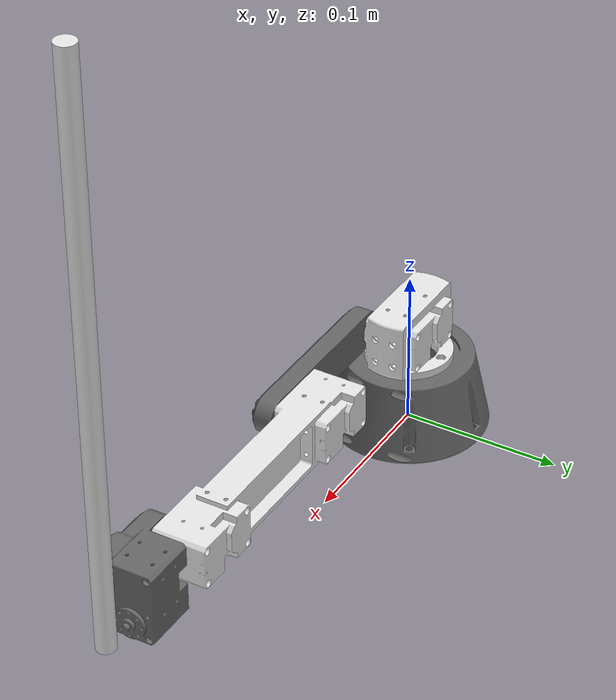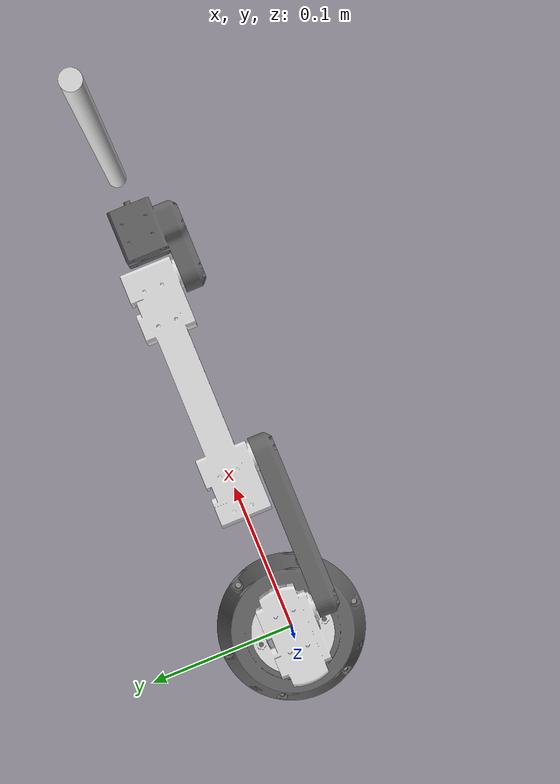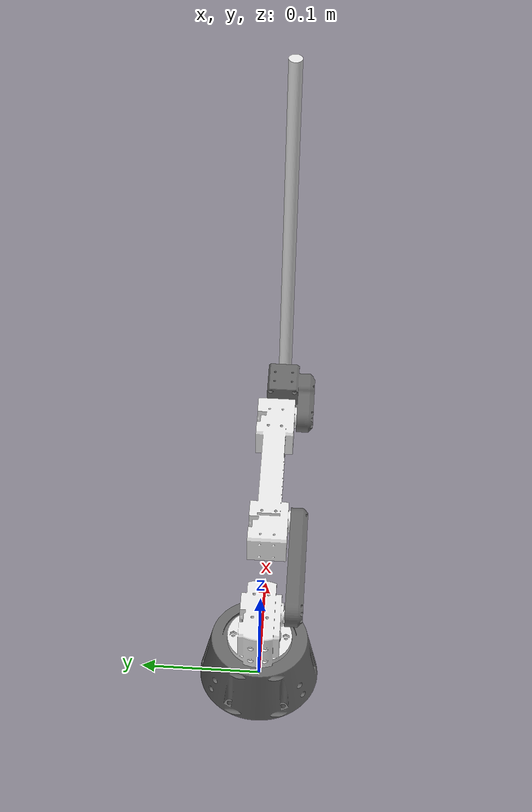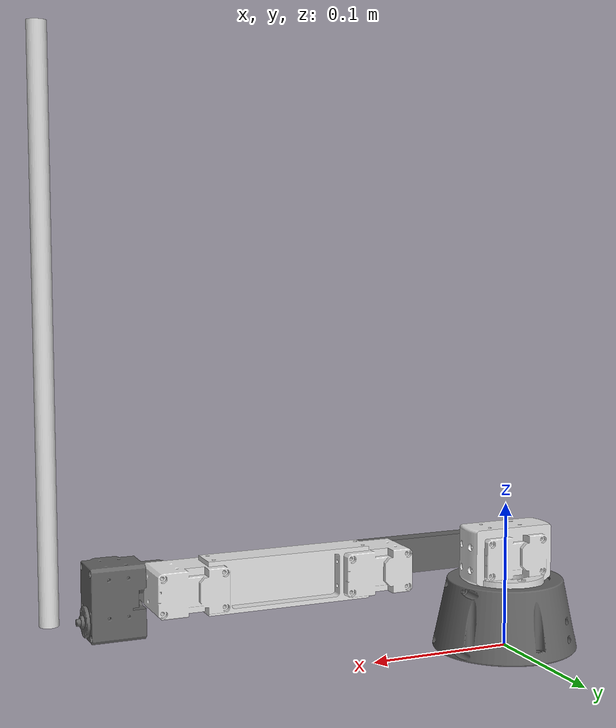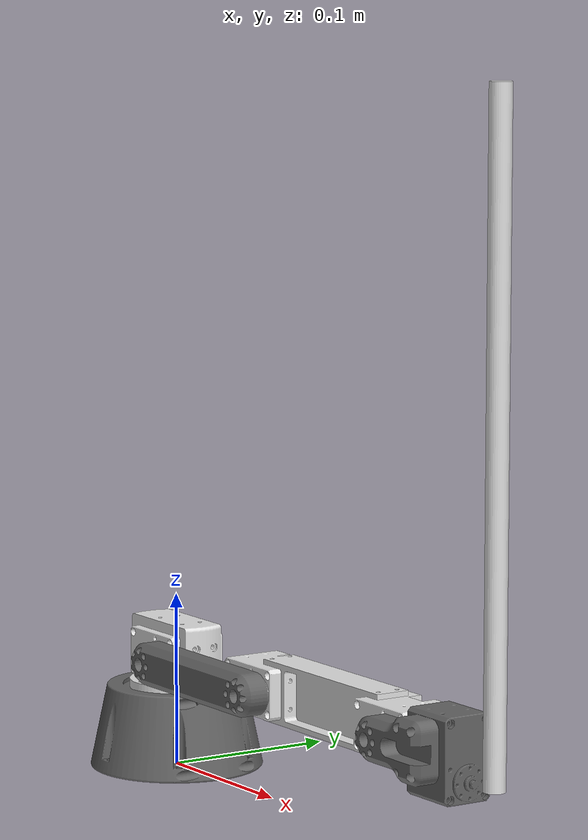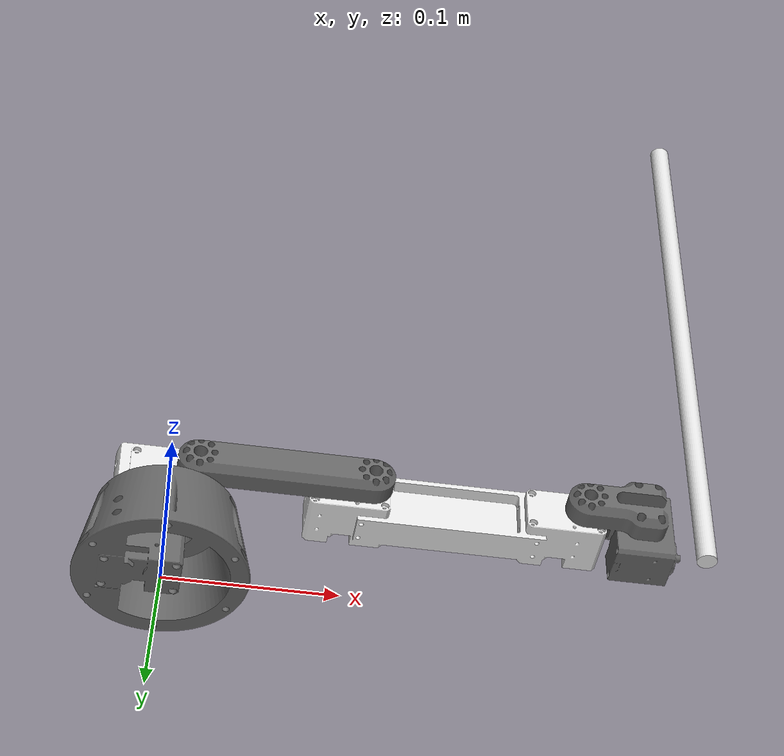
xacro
<?xml version="1.0"?>

<robot name="ken" xmlns:xacro="http://ros.org/wiki/xacro">

  <xacro:include filename="$(find ken_description)/urdf/ken.xacro"/>

  <link name="world"/>

  <joint name="base_link_to_world_joint" type="fixed">
    <parent link="world"/>
    <child link="base_link"/>
  </joint>

  <!-- The following values model the aluminum peripherial case for the
  D435 camera, with the camera joint represented by the actual
  peripherial camera tripod mount -->
  <xacro:property name="d435_cam_width" value="0.090"/>
  <xacro:property name="d435_cam_height" value="0.025"/>
  <xacro:property name="d435_cam_depth" value="0.02505"/>
  <xacro:property name="d435_cam_mount_from_center_offset" value="0.0149"/>
  <!-- glass cover is 0.1 mm inwards from front aluminium plate -->
  <xacro:property name="d435_glass_to_front" value="0.1e-3"/>
  <!-- see datasheet Revision 007, Fig. 4-4 page 65 -->
  <xacro:property name="d435_zero_depth_to_glass" value="4.2e-3"/>
  <!-- convenience precomputation to avoid clutter-->
  <xacro:property name="d435_mesh_x_offset" value="${d435_cam_mount_from_center_offset-d435_glass_to_front-d435_zero_depth_to_glass}"/>
  <!-- The following offset is relative the the physical D435 camera peripherial
  camera tripod mount -->
  <xacro:property name="d435_cam_depth_px" value="${d435_cam_mount_from_center_offset}"/>
  <xacro:property name="d435_cam_depth_py" value="0.0175"/>
  <xacro:property name="d435_cam_depth_pz" value="${d435_cam_height/2}"/>

  <link name="camera_link"/>

  <link name="camera_bottom_screw_frame"/>
  <joint name="camera_link_joint" type="fixed">
    <origin xyz="${d435_mesh_x_offset} ${d435_cam_depth_py} ${d435_cam_depth_pz}" rpy="0 0 0"/>
    <parent link="camera_bottom_screw_frame"/>
    <child link="camera_link" />
  </joint>

  <joint name="base_link_to_camera_bottom_screw_frame" type="fixed">
    <origin xyz="-0.114856 -0.07 0.381814" rpy="0 ${pi*18/180} 0"/>
    <parent link="base_link"/>
    <child link="camera_bottom_screw_frame"/>
  </joint>

</robot>

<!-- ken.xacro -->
<robot xmlns:xacro="http://ros.org/wiki/xacro">
  <material name="black">
    <color rgba="0.2 0.2 0.2 1.0"/>
  </material>
  <material name="grey">
    <color rgba="0.4 0.4 0.4 1.0"/>
  </material>
  <material name="white">
    <color rgba="0.9 0.9 0.9 1.0"/>
  </material>

  <xacro:property name="joint_effort_limit" value="10.0"/>
  <xacro:property name="joint_velocity_limit" value="1.0"/>
  <xacro:property name="TO_RADIAN" value="${pi / 180.0}"/>

  <link name="base_link"/>
  <link name="tip_link"/>

  <joint name="base_to_arm_base" type="fixed">
    <origin xyz="0 0 0.065" rpy="0 0 0"/>
    <parent link="base_link"/>
    <child link="arm_base_link"/>
  </joint>

  <joint name="arm_base_to_arm_link1" type="revolute">
    <origin xyz="0 0 0" rpy="0 0 0"/>
    <axis xyz="0 0 1"/>
    <parent link="arm_base_link"/>
    <child link="arm_link1"/>
    <limit effort="${joint_effort_limit}" velocity="${joint_velocity_limit}" lower="${-180*TO_RADIAN}" upper="${180*TO_RADIAN}" />
  </joint>

  <joint name="arm_link1_to_arm_link2" type="revolute">
    <origin xyz="0.015 -0.02 0.0" rpy="${pi/2} 0 0"/>
    <axis xyz="0 0 1"/>
    <parent link="arm_link1"/>
    <child link="arm_link2"/>
    <limit effort="${joint_effort_limit}" velocity="${joint_velocity_limit}" lower="${-10*TO_RADIAN}" upper="${180*TO_RADIAN}" />
  </joint>

  <joint name="arm_link2_to_arm_link3" type="revolute">
    <origin xyz="0.1 0.0 0.0" rpy="0 0 0"/>
    <axis xyz="0 0 1"/>
    <parent link="arm_link2"/>
    <child link="arm_link3"/>
    <limit effort="${joint_effort_limit}" velocity="${joint_velocity_limit}" lower="${-150*TO_RADIAN}" upper="${150*TO_RADIAN}" />
  </joint>

  <joint name="arm_link3_to_arm_link4" type="revolute">
    <origin xyz="0.125 0.0 -0.014" rpy="0 0 ${-pi/2}"/>
    <axis xyz="0 0 1"/>
    <parent link="arm_link3"/>
    <child link="arm_link4"/>
    <limit effort="${joint_effort_limit}" velocity="${joint_velocity_limit}" lower="${-90*TO_RADIAN}" upper="${90*TO_RADIAN}" />
  </joint>

  <joint name="arm_link4_to_shinai_link" type="revolute">
    <origin xyz="0.016 0.075 0.0" rpy="${pi/2} 0 ${pi}"/>
    <axis xyz="0 0 1"/>
    <parent link="arm_link4"/>
    <child link="shinai_link"/>
    <limit effort="${joint_effort_limit}" velocity="${joint_velocity_limit}" lower="${-180*TO_RADIAN}" upper="${180*TO_RADIAN}" />
  </joint>

  <joint name="shinai_link_to_tip" type="fixed">
    <origin xyz="0.31 0 0" rpy="0 0 0"/>
    <parent link="shinai_link"/>
    <child link="tip_link"/>
  </joint>

  <link name="arm_base_link">
    <visual>
      <origin xyz="0 0 -0.065" rpy="0 0 0"/>
      <geometry>
        <mesh filename="package://ken_description/meshes/arm_base.stl" scale="1 1 1"/>
      </geometry>
      <material name="grey"/>
    </visual>
    <collision>
      <origin xyz="0 0 -0.065" rpy="0 0 0"/>
      <geometry>
        <mesh filename="package://ken_description/meshes/arm_base.stl" scale="1 1 1"/>
      </geometry>
    </collision>
    <inertial>
      <mass value="0.3"/>
      <origin xyz="0.0 0.0 0.0" rpy="0 0 0"/>
      <inertia ixx="0.1" ixy="0.1" ixz="0.1" iyy="0.1" iyz="0.1" izz="0.1"/>
    </inertial>
  </link>

  <link name="arm_link1">
    <visual>
      <origin xyz="0 0 -0.023" rpy="0 0 0"/>
      <geometry>
        <mesh filename="package://ken_description/meshes/link1.stl" scale="1 1 1"/>
      </geometry>
      <material name="white"/>
    </visual>
    <collision>
      <origin xyz="0 0 -0.023" rpy="0 0 0"/>
      <geometry>
        <mesh filename="package://ken_description/meshes/link1.stl" scale="1 1 1"/>
      </geometry>
    </collision>
    <inertial>
      <mass value="0.3"/>
      <origin xyz="0.0 0.0 0.0" rpy="0 0 0"/>
      <inertia ixx="0.1" ixy="0.1" ixz="0.1" iyy="0.1" iyz="0.1" izz="0.1"/>
    </inertial>
  </link>

  <link name="arm_link2">
    <visual>
      <origin xyz="0 0 0" rpy="${-pi/2} 0 0"/>
      <geometry>
        <mesh filename="package://ken_description/meshes/link2.stl" scale="1 1 1"/>
      </geometry>
      <material name="grey"/>
    </visual>
    <collision>
      <origin xyz="0 0 0" rpy="${-pi/2} 0 0"/>
      <geometry>
        <mesh filename="package://ken_description/meshes/link2.stl" scale="1 1 1"/>
      </geometry>
    </collision>
    <inertial>
      <mass value="0.3"/>
      <origin xyz="0.0 0.0 0.0" rpy="0 0 0"/>
      <inertia ixx="0.1" ixy="0.1" ixz="0.1" iyy="0.1" iyz="0.1" izz="0.1"/>
    </inertial>
  </link>

  <link name="arm_link3">
    <visual>
      <origin xyz="0 0 0" rpy="${-pi/2} 0 ${pi/2}"/>
      <geometry>
        <mesh filename="package://ken_description/meshes/link3.stl" scale="1 1 1"/>
      </geometry>
      <material name="white"/>
    </visual>
    <collision>
      <origin xyz="0 0 0" rpy="${-pi/2} 0 ${pi/2}"/>
      <geometry>
        <mesh filename="package://ken_description/meshes/link3.stl" scale="1 1 1"/>
      </geometry>
    </collision>
    <inertial>
      <mass value="0.3"/>
      <origin xyz="0.0 0.0 0.0" rpy="0 0 0"/>
      <inertia ixx="0.1" ixy="0.1" ixz="0.1" iyy="0.1" iyz="0.1" izz="0.1"/>
    </inertial>
  </link>

  <link name="arm_link4">
    <visual>
      <origin xyz="0 0 0.014" rpy="${-pi/2} 0 ${pi}"/>
      <geometry>
        <mesh filename="package://ken_description/meshes/link4.stl" scale="1 1 1"/>
      </geometry>
      <material name="grey"/>
    </visual>
    <collision>
      <origin xyz="0 0 0.014" rpy="${-pi/2} 0 ${pi}"/>
      <geometry>
        <mesh filename="package://ken_description/meshes/link4.stl" scale="1 1 1"/>
      </geometry>
    </collision>
    <inertial>
      <mass value="0.3"/>
      <origin xyz="0.0 0.0 0.0" rpy="0 0 0"/>
      <inertia ixx="0.1" ixy="0.1" ixz="0.1" iyy="0.1" iyz="0.1" izz="0.1"/>
    </inertial>
  </link>

  <link name="shinai_link">
    <visual>
      <origin xyz="0 0 0" rpy="${pi/2} 0 ${pi/2}"/>
      <geometry>
        <mesh filename="package://ken_description/meshes/shinai.stl" scale="1 1 1"/>
      </geometry>
      <material name="white"/>
    </visual>
    <collision>
      <origin xyz="0 0 0" rpy="${pi/2} 0 ${pi/2}"/>
      <geometry>
        <mesh filename="package://ken_description/meshes/shinai.stl" scale="1 1 1"/>
      </geometry>
    </collision>
    <inertial>
      <mass value="0.3"/>
      <origin xyz="0.0 0.0 0.0" rpy="0 0 0"/>
      <inertia ixx="0.1" ixy="0.1" ixz="0.1" iyy="0.1" iyz="0.1" izz="0.1"/>
    </inertial>
  </link>

</robot>
